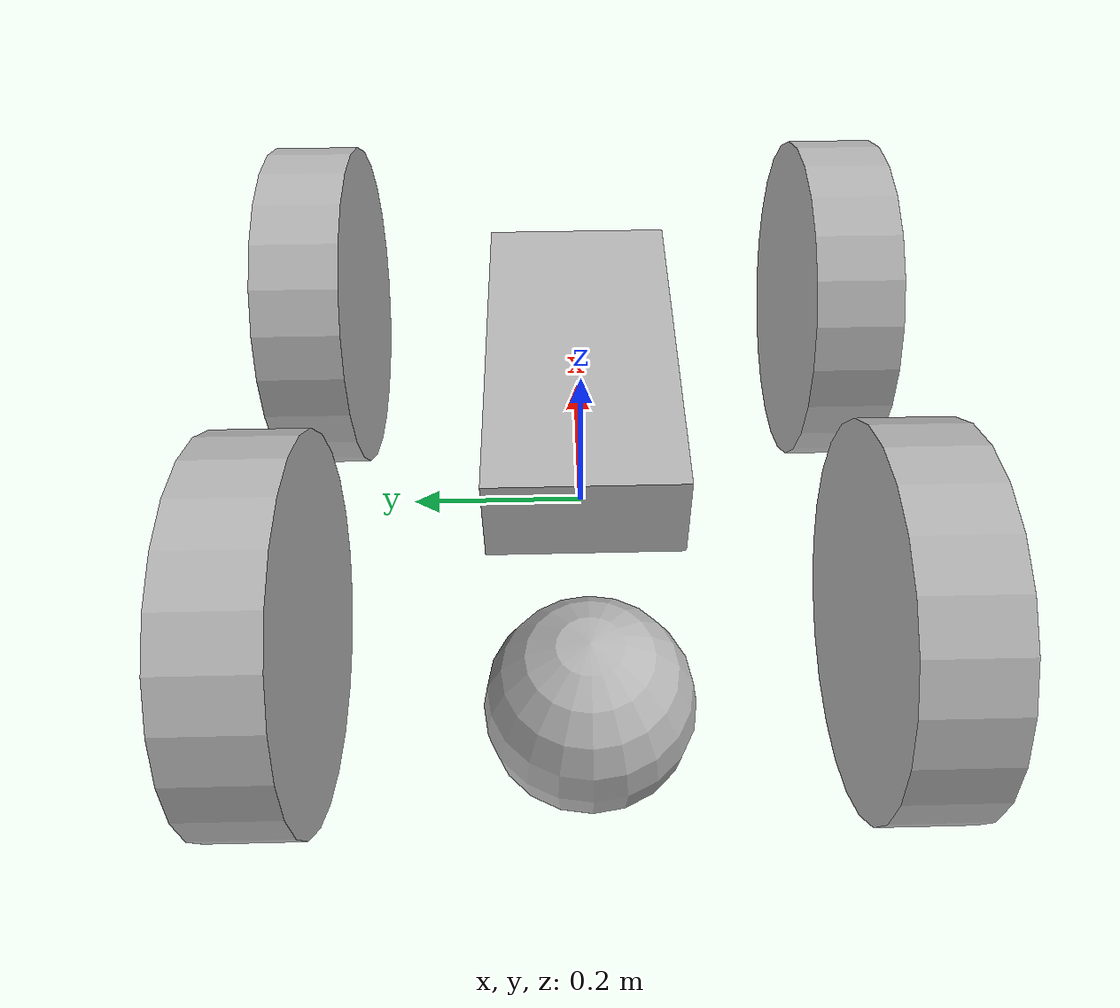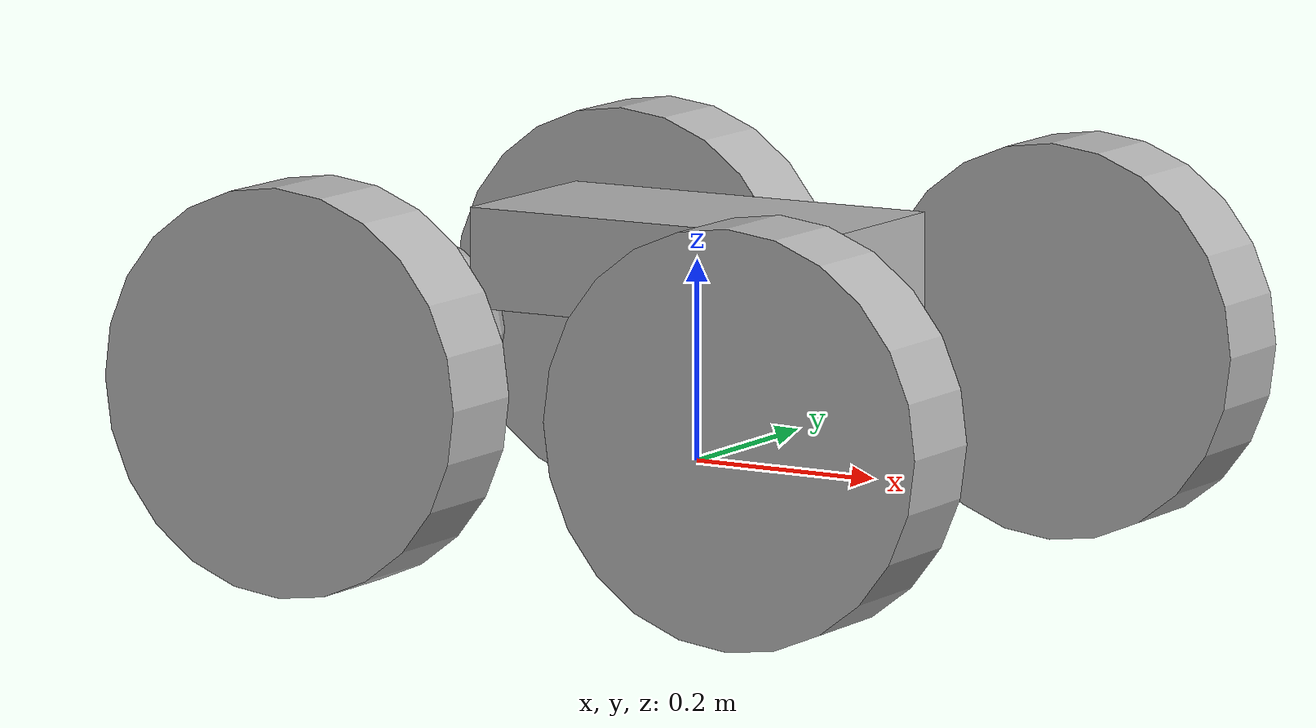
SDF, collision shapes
<?xml version='1.0'?>
<sdf version='1.4'>
  <model name="my_robot_four">

    <static>false</static>

    <link name='chassis'>
      <pose>0 0 .2 0 0 0</pose>

      <collision name='collision'>
        <geometry>
          <box>
            <size>.4 .2 .1</size>
          </box>
        </geometry>
      </collision>

      <visual name='visual'>
        <geometry>
          <mesh>
            <scale>0.2 0.2 0.2</scale>
            <uri>model://my_robot_four/meshes/four_wheel.dae</uri>
          </mesh>
        </geometry>
      </visual>

      <collision name='caster_collision'>
        <pose>-0.34 0 -0.1 0 0 0</pose>

        <geometry>
      	  <sphere>
      	    <radius>.1</radius>
          </sphere>
        </geometry>

        <surface>
          <friction>
      	    <ode>
      	      <mu>0</mu>
      	      <mu2>0</mu2>
      	      <slip1>1.0</slip1>
      	      <slip2>1.0</slip2>
      	    </ode>
          </friction>
        </surface>
      </collision>

      <visual name='caster_visual'>
        <pose>-0.34 0 -0.1 0 0 0</pose>

        <geometry>
          <sphere>
            <radius>.1</radius>
          </sphere>
        </geometry>

      </visual>

      <sensor name='body_contact' type='contact'>
        <contact>
          <collision>collision</collision>
        </contact>
        <update_rate> 5 </update_rate>
      </sensor>
    </link>

    <link name="left_wheel">
      <pose>0.25 0.32 0.1 0 1.5707 1.5707</pose>

        <collision name="collision">
          <geometry>
            <cylinder>
              <radius>.2</radius>
              <length>.1</length>
            </cylinder>
          </geometry>
        </collision>

        <visual name="visual">
          <geometry>
            <mesh>
              <scale>0.2 0.2 0.2</scale>
              <uri>model://my_robot_four/meshes/wheel.dae</uri>
            </mesh>
          </geometry>
        </visual>

      <sensor name='left_wheel_contact' type='contact'>
        <contact>
          <collision>collision</collision>
        </contact>
        <update_rate> 5 </update_rate>
      </sensor>
    </link>

    <link name="right_wheel">
      <pose>0.25 -0.32 0.1 0 1.5707 1.5707</pose>

      <collision name="collision">
        <geometry>
          <cylinder>
            <radius>.2</radius>
            <length>.1</length>
          </cylinder>
        </geometry>
      </collision>

      <visual name="visual">
        <geometry>
            <mesh>
              <scale>0.2 0.2 -0.2</scale>
              <uri>model://my_robot_four/meshes/wheel.dae</uri>
            </mesh>
        </geometry>
      </visual>

      <sensor name='right_wheel_contact' type='contact'>
        <contact>
          <collision>collision</collision>
        </contact>
        <update_rate> 5 </update_rate>
      </sensor>
    </link>

    <link name="right_wheel1">
      <pose>-0.25 -0.32 0.1 0 1.5707 1.5707</pose>

      <collision name="collision">
        <geometry>
          <cylinder>
            <radius>.2</radius>
            <length>.1</length>
          </cylinder>
        </geometry>
      </collision>

      <visual name="visual">
        <geometry>
            <mesh>
              <scale>0.2 0.2 -0.2</scale>
              <uri>model://my_robot_four/meshes/wheel.dae</uri>
            </mesh>
        </geometry>
      </visual>
    </link>

    <link name="left_wheel1">
      <pose>-0.25 0.32 0.1 0 1.5707 1.5707</pose>

        <collision name="collision">
          <geometry>
            <cylinder>
              <radius>.2</radius>
              <length>.1</length>
            </cylinder>
          </geometry>
        </collision>

        <visual name="visual">
          <geometry>
            <mesh>
              <scale>0.2 0.2 0.2</scale>
              <uri>model://my_robot_four/meshes/wheel.dae</uri>
            </mesh>
          </geometry>
        </visual>
      </link>

    <joint type="revolute" name="left_wheel_hinge">
      <pose>0 0 -0.03 0 0 0</pose>
      <child>left_wheel</child>
      <parent>chassis</parent>
      <axis>
        <xyz>0 1 0</xyz>
      </axis>
    </joint>

    <joint type="revolute" name="right_wheel_hinge">
      <pose>0 0 0.03 0 0 0</pose>
      <child>right_wheel</child>
      <parent>chassis</parent>
      <axis>
        <xyz>0 1 0</xyz>
      </axis>
    </joint>

    <joint type="revolute" name="left_wheel_hinge1">
      <pose>0 0 -0.03 0 0 0</pose>
      <child>left_wheel1</child>
      <parent>chassis</parent>
      <axis>
        <xyz>0 1 0</xyz>
      </axis>
    </joint>

    <joint type="revolute" name="right_wheel_hinge1">
      <pose>0 0 0.03 0 0 0</pose>
      <child>right_wheel1</child>
      <parent>chassis</parent>
      <axis>
        <xyz>0 1 0</xyz>
      </axis>
    </joint>
    <plugin name="twowheel" filename="libtwowheel.so"/>
  </model>
</sdf>
